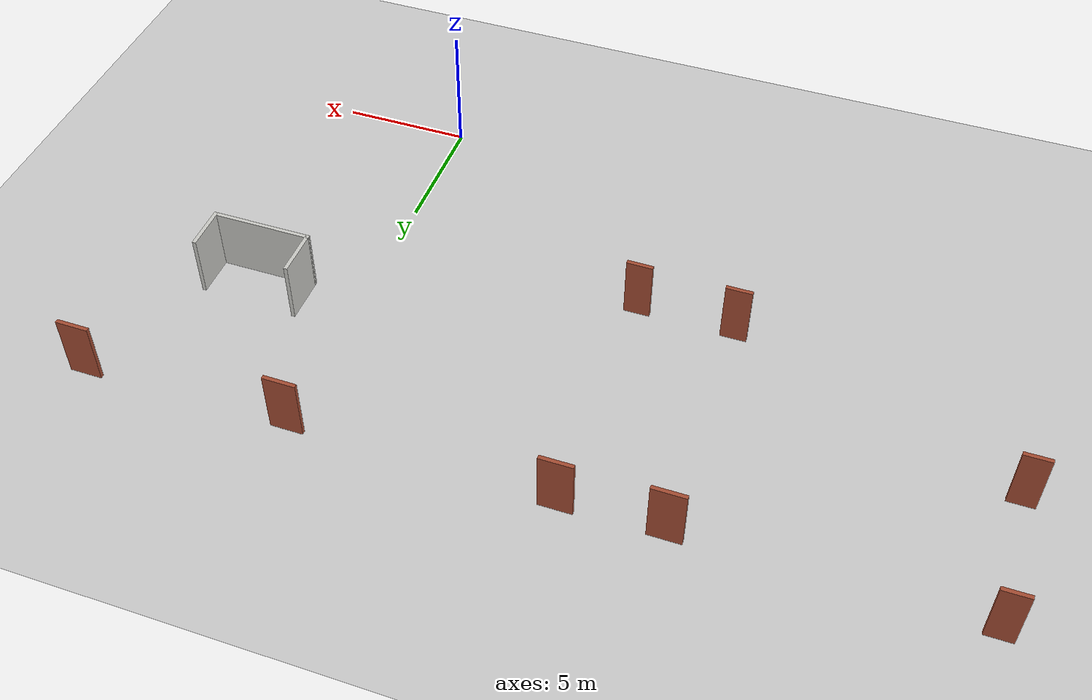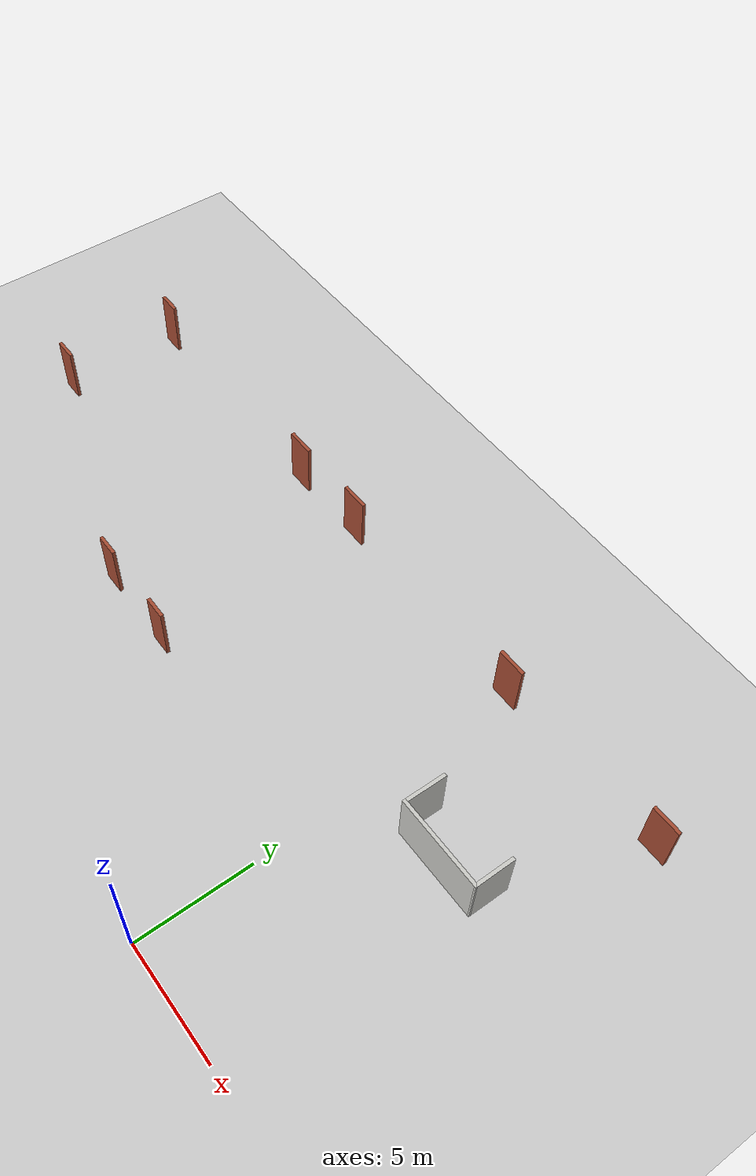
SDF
<sdf version="1.6">
 <world name="default">
  <model name="ground_plane">
   <static>1</static>
   <link name="link">
    <collision name="collision">
     <geometry><plane><normal>0 0 1</normal><size>100 100</size></plane></geometry>
     <surface><friction><ode><mu>100</mu><mu2>50</mu2></ode></friction></surface>
    </collision>
    <visual name="visual">
     <cast_shadows>0</cast_shadows>
     <geometry><plane><normal>0 0 1</normal><size>100 100</size></plane></geometry>
     <material>
      <script><uri>file://media/materials/scripts/gazebo.material</uri><name>Gazebo/Grey</name></script>
     </material>
    </visual>
   </link>
  </model>
  <model name="Untitled">
   <pose>3.98775 10.8542 0 0 -0 0</pose>
   <link name="Wall_14">
    <collision name="Wall_14_Collision">
     <geometry><box><size>3.946 0.15 2.5</size></box></geometry>
     <pose>0 0 1.25 0 -0 0</pose>
    </collision>
    <visual name="Wall_14_Visual">
     <pose>0 0 1.25 0 -0 0</pose>
     <geometry><box><size>3.946 0.15 2.5</size></box></geometry>
     <material>
      <script><uri>file://media/materials/scripts/gazebo.material</uri><name>Gazebo/CeilingTiled</name></script>
      <ambient>0.760784 0.662745 0.627451 1</ambient>
     </material>
    </visual>
    <pose>1.1e-05 -0.854512 0 0 -0 0.004545</pose>
   </link>
   <link name="Wall_17">
    <collision name="Wall_17_Collision">
     <geometry><box><size>1.75 0.15 2.5</size></box></geometry>
     <pose>0 0 1.25 0 -0 0</pose>
    </collision>
    <visual name="Wall_17_Visual">
     <pose>0 0 1.25 0 -0 0</pose>
     <geometry><box><size>1.75 0.15 2.5</size></box></geometry>
     <material>
      <script><uri>file://media/materials/scripts/gazebo.material</uri><name>Gazebo/CeilingTiled</name></script>
      <ambient>0.760784 0.662745 0.627451 1</ambient>
     </material>
    </visual>
    <pose>1.89799 -0.045885 0 0 -0 1.5708</pose>
   </link>
   <link name="Wall_5">
    <collision name="Wall_5_Collision">
     <geometry><box><size>1.80552 0.15 2.5</size></box></geometry>
     <pose>0 0 1.25 0 -0 0</pose>
    </collision>
    <visual name="Wall_5_Visual">
     <pose>0 0 1.25 0 -0 0</pose>
     <geometry><box><size>1.80552 0.15 2.5</size></box></geometry>
     <material>
      <script><uri>file://media/materials/scripts/gazebo.material</uri><name>Gazebo/CeilingTiled</name></script>
      <ambient>0.760784 0.662745 0.627451 1</ambient>
     </material>
    </visual>
    <pose>-1.89396 0.035367 0 0 0 -1.57564</pose>
   </link>
   <static>1</static>
  </model>
  <model name="Koridor3">
   <pose>-8.30273 12.039 0 0 -0 0</pose>
   <link name="Wall_13">
    <collision name="Wall_13_Collision">
     <geometry><box><size>1 0.15 2.5</size></box></geometry>
     <pose>0 0 1.25 0 -0 0</pose>
    </collision>
    <visual name="Wall_13_Visual">
     <pose>0 0 1.25 0 -0 0</pose>
     <geometry><box><size>1 0.15 2.5</size></box></geometry>
     <material>
      <script><uri>file://media/materials/scripts/gazebo.material</uri><name>Gazebo/Bricks</name></script>
      <ambient>1 1 1 1</ambient>
     </material>
    </visual>
    <pose>-16.2499 4.77379 0 0 -0 0</pose>
   </link>
   <link name="Wall_22">
    <collision name="Wall_22_Collision">
     <geometry><box><size>1 0.15 2.5</size></box></geometry>
     <pose>0 0 1.25 0 -0 0</pose>
    </collision>
    <visual name="Wall_22_Visual">
     <pose>0 0 1.25 0 -0 0</pose>
     <geometry><box><size>1 0.15 2.5</size></box></geometry>
     <material>
      <script><uri>file://media/materials/scripts/gazebo.material</uri><name>Gazebo/Bricks</name></script>
      <ambient>1 1 1 1</ambient>
     </material>
    </visual>
    <pose>-16.2945 -0.631699 0 0 -0 0</pose>
   </link>
   <link name="Wall_28">
    <collision name="Wall_28_Collision">
     <geometry><box><size>1 0.15 2.5</size></box></geometry>
     <pose>0 0 1.25 0 -0 0</pose>
    </collision>
    <visual name="Wall_28_Visual">
     <pose>0 0 1.25 0 -0 0</pose>
     <geometry><box><size>1 0.15 2.5</size></box></geometry>
     <material>
      <script><uri>file://media/materials/scripts/gazebo.material</uri><name>Gazebo/Bricks</name></script>
      <ambient>1 1 1 1</ambient>
     </material>
    </visual>
    <pose>-5.39497 -4.73148 0 0 -0 0</pose>
   </link>
   <link name="Wall_30">
    <collision name="Wall_30_Collision">
     <geometry><box><size>1.25 0.15 2.5</size></box></geometry>
     <pose>0 0 1.25 0 -0 0</pose>
    </collision>
    <visual name="Wall_30_Visual">
     <pose>0 0 1.25 0 -0 0</pose>
     <geometry><box><size>1.25 0.15 2.5</size></box></geometry>
     <material>
      <script><uri>file://media/materials/scripts/gazebo.material</uri><name>Gazebo/Bricks</name></script>
      <ambient>1 1 1 1</ambient>
     </material>
    </visual>
    <pose>-5.4717 4.68979 0 0 -0 0</pose>
   </link>
   <link name="Wall_32">
    <collision name="Wall_32_Collision">
     <geometry><box><size>1.25 0.15 2.5</size></box></geometry>
     <pose>0 0 1.25 0 -0 0</pose>
    </collision>
    <visual name="Wall_32_Visual">
     <pose>0 0 1.25 0 -0 0</pose>
     <geometry><box><size>1.25 0.15 2.5</size></box></geometry>
     <material>
      <script><uri>file://media/materials/scripts/gazebo.material</uri><name>Gazebo/Bricks</name></script>
      <ambient>1 1 1 1</ambient>
     </material>
    </visual>
    <pose>-1.71921 4.75509 0 0 -0 0</pose>
   </link>
   <link name="Wall_34">
    <collision name="Wall_34_Collision">
     <geometry><box><size>1 0.15 2.5</size></box></geometry>
     <pose>0 0 1.25 0 -0 0</pose>
    </collision>
    <visual name="Wall_34_Visual">
     <pose>0 0 1.25 0 -0 0</pose>
     <geometry><box><size>1 0.15 2.5</size></box></geometry>
     <material>
      <script><uri>file://media/materials/scripts/gazebo.material</uri><name>Gazebo/Bricks</name></script>
      <ambient>1 1 1 1</ambient>
     </material>
    </visual>
    <pose>-1.66722 -4.77379 0 0 -0 0</pose>
   </link>
   <link name="Wall_36">
    <collision name="Wall_36_Collision">
     <geometry><box><size>1.25 0.15 2.5</size></box></geometry>
     <pose>0 0 1.25 0 -0 0</pose>
    </collision>
    <visual name="Wall_36_Visual">
     <pose>0 0 1.25 0 -0 0</pose>
     <geometry><box><size>1.25 0.15 2.5</size></box></geometry>
     <material>
      <script><uri>file://media/materials/scripts/gazebo.material</uri><name>Gazebo/Bricks</name></script>
      <ambient>1 1 1 1</ambient>
     </material>
    </visual>
    <pose>8.19975 4.68013 0 0 -0 0</pose>
   </link>
   <link name="Wall_38">
    <collision name="Wall_38_Collision">
     <geometry><box><size>1.25 0.15 2.5</size></box></geometry>
     <pose>0 0 1.25 0 -0 0</pose>
    </collision>
    <visual name="Wall_38_Visual">
     <pose>0 0 1.25 0 -0 0</pose>
     <geometry><box><size>1.25 0.15 2.5</size></box></geometry>
     <material>
      <script><uri>file://media/materials/scripts/gazebo.material</uri><name>Gazebo/Bricks</name></script>
      <ambient>1 1 1 1</ambient>
     </material>
    </visual>
    <pose>16.1695 4.77205 0 0 -0 0</pose>
   </link>
   <static>1</static>
  </model>
 </world>
</sdf>
